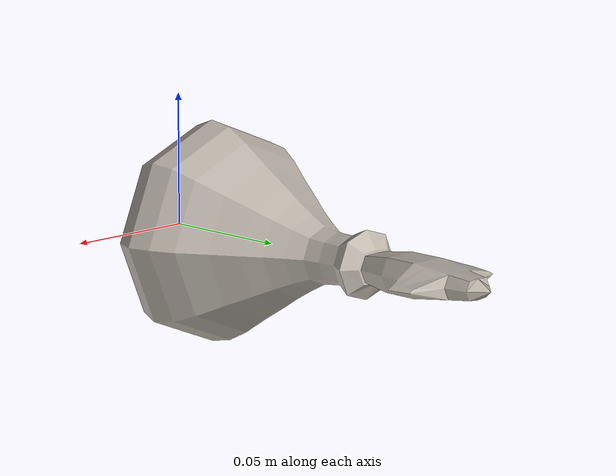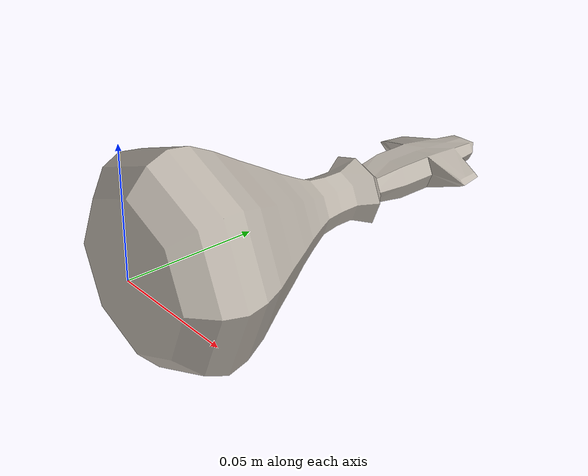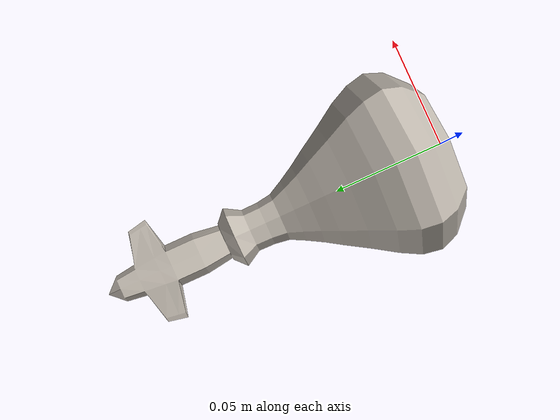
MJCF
<mujoco model="c5940beb97484d7db58bc4be561ffd78">
  <default>
    <default class="visual">
      <geom group="2" type="mesh" contype="0" conaffinity="0"/>
    </default>
    <default class="collision">
      <geom group="3" type="mesh"/>
    </default>
  </default>
  <asset>
    <texture type="2d" name="material_0" file="material_0.png"/>
    <material name="material_0" texture="material_0" specular="0.4000000000000001" shininess="0.001"/>
    <mesh file="c5940beb97484d7db58bc4be561ffd78.obj"/>
    <mesh file="c5940beb97484d7db58bc4be561ffd78_collision_0.obj"/>
    <mesh file="c5940beb97484d7db58bc4be561ffd78_collision_1.obj"/>
    <mesh file="c5940beb97484d7db58bc4be561ffd78_collision_2.obj"/>
    <mesh file="c5940beb97484d7db58bc4be561ffd78_collision_3.obj"/>
    <mesh file="c5940beb97484d7db58bc4be561ffd78_collision_4.obj"/>
    <mesh file="c5940beb97484d7db58bc4be561ffd78_collision_5.obj"/>
  </asset>
  <worldbody>
    <body name="c5940beb97484d7db58bc4be561ffd78">
      <freejoint/>
      <geom material="material_0" mesh="c5940beb97484d7db58bc4be561ffd78" class="visual"/>
      <geom mesh="c5940beb97484d7db58bc4be561ffd78_collision_0" rgba="0.8019670808241132 0.35343536142605403 0.17297480245432528 1" class="collision"/>
      <geom mesh="c5940beb97484d7db58bc4be561ffd78_collision_1" rgba="0.2662511960456294 0.23127404788685335 0.3258453824557641 1" class="collision"/>
      <geom mesh="c5940beb97484d7db58bc4be561ffd78_collision_2" rgba="0.9967541958790848 0.0066172651902488555 0.9202820809511182 1" class="collision"/>
      <geom mesh="c5940beb97484d7db58bc4be561ffd78_collision_3" rgba="0.14645274830519128 0.739295696072897 0.719250690650558 1" class="collision"/>
      <geom mesh="c5940beb97484d7db58bc4be561ffd78_collision_4" rgba="0.051309586138254426 0.506468742007134 0.7827365266962371 1" class="collision"/>
      <geom mesh="c5940beb97484d7db58bc4be561ffd78_collision_5" rgba="0.5198126334169274 0.8987776836667539 0.7383096588973183 1" class="collision"/>
    </body>
  </worldbody>
</mujoco>
